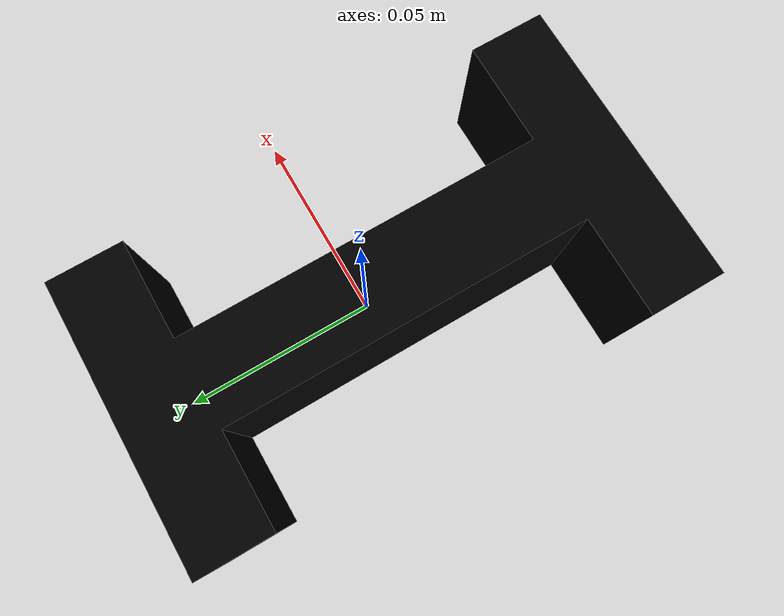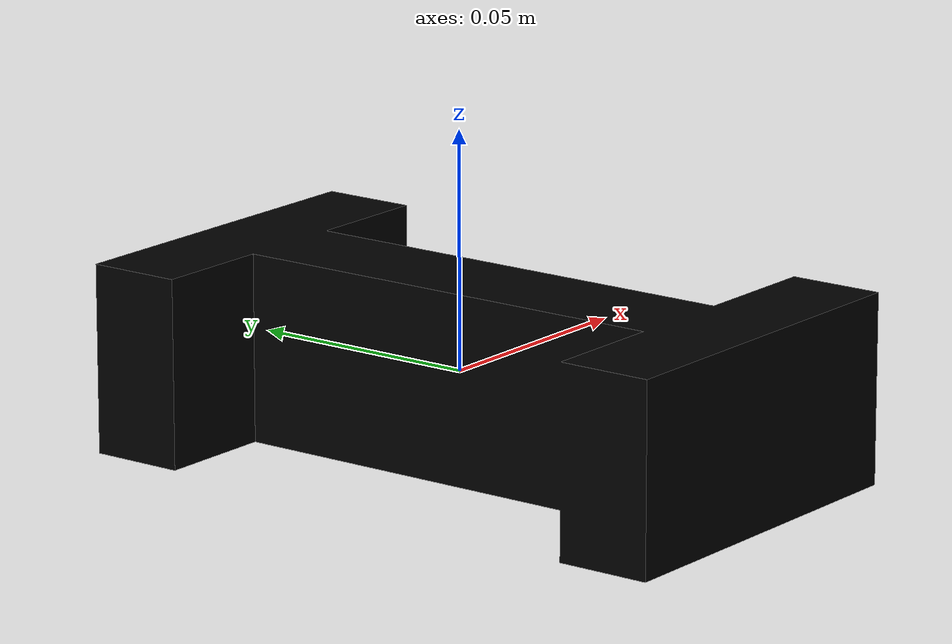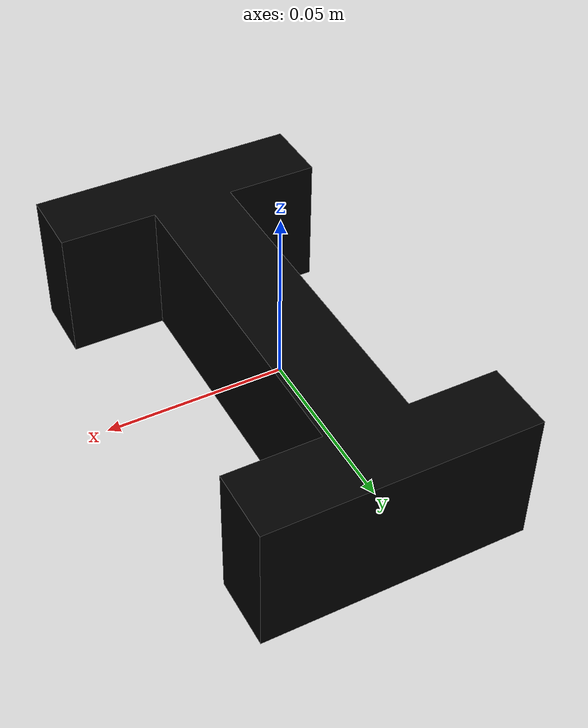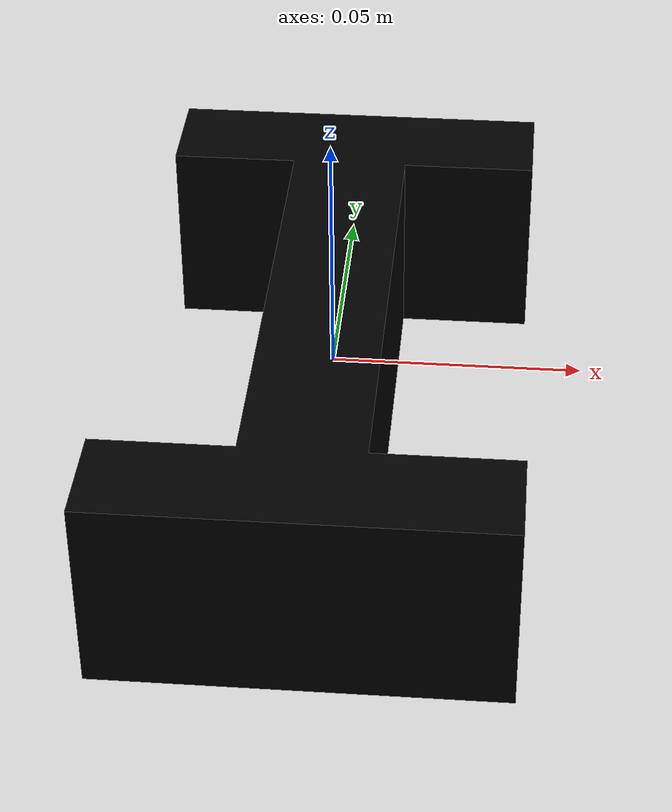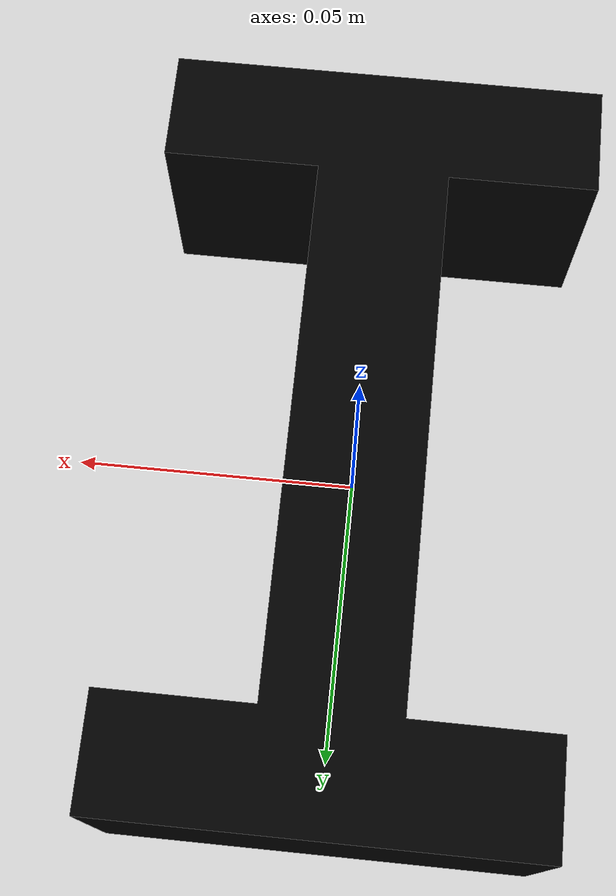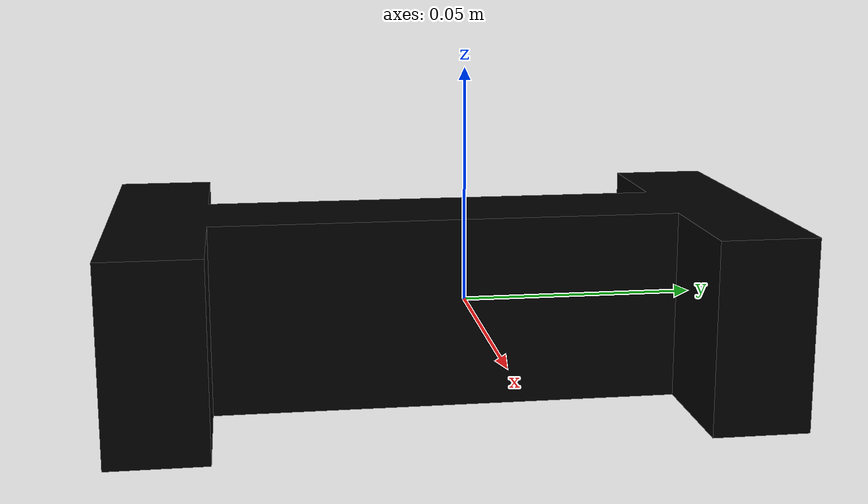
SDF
<?xml version="1.0"?>
<sdf version="1.7">
<!-- This SDF was autogenerated by controller_sdf_generation.py -->
  <model name="anything">
    <link name="smaller_i">
      <inertial>
        <pose>0 0 0 0 0 0</pose>
        <mass>1</mass>
        <inertia>
            <ixx>0.003</ixx>
            <iyy>0.003 </iyy>
            <izz>0.006 </izz>
            <ixy>0.0</ixy>
            <ixz>0.0</ixz>
            <iyz>0.0</iyz>
        </inertia>
      </inertial>
      <visual name="smaller_i">
        <pose>0 0 0 0 0 0</pose>
        <geometry>
          <mesh>
            <uri>smaller_i.obj</uri>
          </mesh>
        </geometry>
        <material>
          <diffuse>0 0 0 1</diffuse>
        </material>
      </visual>
      <collision name="smaller_i_volume">
        <pose>0 0 0 0 0 0</pose>
            <geometry>
          <mesh>
            <uri>smaller_i.obj</uri>
          </mesh>
        </geometry>
        <drake:proximity_properties>
          <drake:compliant_hydroelastic/>
          <drake:hydroelastic_modulus> 3.0e7 </drake:hydroelastic_modulus>
          <drake:mesh_resolution_hint> 0.18 </drake:mesh_resolution_hint>
          <drake:hunt_crossley_dissipation>10</drake:hunt_crossley_dissipation>
          <drake:mu_dynamic>0.3</drake:mu_dynamic>
        </drake:proximity_properties>
      </collision>
      <collision name="corner_nxynz">
        <geometry>
          <sphere>
            <radius>0.001</radius>
          </sphere>
        </geometry>
        <drake:proximity_properties>
        <drake:mu_dynamic>0.3</drake:mu_dynamic>
        </drake:proximity_properties>
        <pose> -0.03933800 0.06396240 -0.02000000 0 0 0</pose>
      </collision>
      <collision name="corner_nxnynz">
        <geometry>
          <sphere>
            <radius>0.001</radius>
          </sphere>
        </geometry>
        <drake:proximity_properties>
        <drake:mu_dynamic>0.3</drake:mu_dynamic>
        </drake:proximity_properties>
        <pose> -0.03933800 -0.07447510 -0.02000000 0 0 0</pose>
      </collision>
      <collision name="corner_xynz">
        <geometry>
          <sphere>
            <radius>0.001</radius>
          </sphere>
        </geometry>
        <drake:proximity_properties>
        <drake:mu_dynamic>0.3</drake:mu_dynamic>
        </drake:proximity_properties>
        <pose> 0.03975930 -0.00525635 -0.02000000 0 0 0</pose>
      </collision>

    </link>
  </model>
</sdf>
